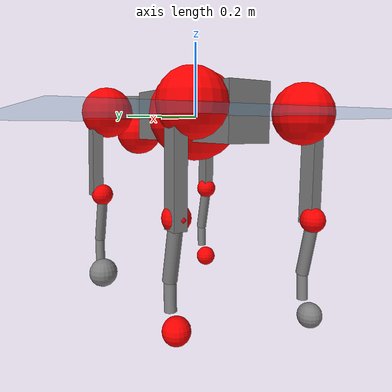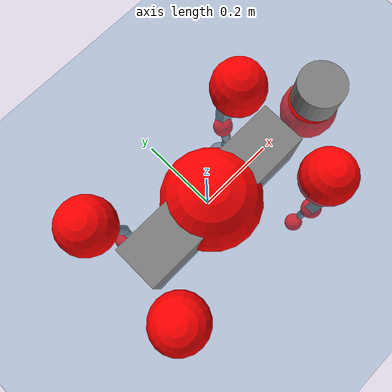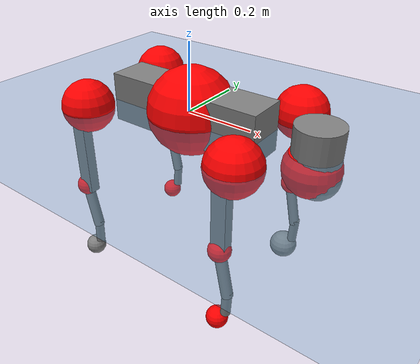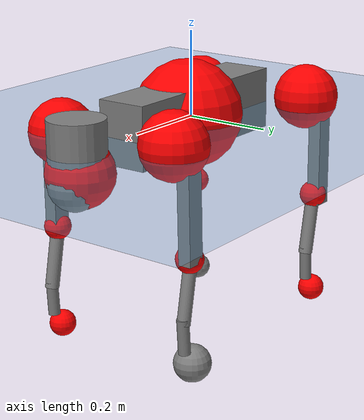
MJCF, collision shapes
<mujoco model="go2">
  <compiler angle="radian" assetdir="assets" balanceinertia="true" inertiafromgeom="false"/>

  <option timestep="0.005" density="1.2" viscosity="2e-05"/>

  <size nkey="1"/>

  <visual>
    <quality shadowsize="8192"/>
    <map shadowclip="0.5"/>
  </visual>

  <default>
    <default class="/">
      <geom contype="0" conaffinity="0" group="1" solref="-1000 -80"/>
      <site size="0.01 0.005 0.005" group="5"/>
      <general forcelimited="true" biastype="affine" gainprm="20" biasprm="0 -20 -0.5"/>
      <default class="go2">
        <joint armature="0.01" damping="0.01" frictionloss="0.2"/>
        <geom condim="1" margin="0.001"/>
        <default class="visual">
          <geom type="mesh" group="2"/>
        </default>
        <default class="collision">
          <geom group="3"/>
          <default class="foot">
            <geom size="0.022 0 0" condim="6" priority="1" friction="0.8 0.02 0.01" solimp="0.015 1 0.022"/>
          </default>
        </default>
        <default class="reward_collision_sphere">
          <geom group="5" rgba="1 0 0 1"/>
        </default>
      </default>
    </default>
  </default>

  <asset>
    <texture type="skybox" colorspace="auto" name="//unnamed_texture_0" builtin="gradient" rgb1="0.95 0.95 0.95" rgb2="0.95 0.95 0.95" width="100" height="600"/>
    <texture type="2d" colorspace="auto" name="texplane" builtin="checker" rgb1="0.345 0.575 0.748" rgb2="0.345 0.575 0.748" markrgb="1 1 1" width="512" height="512"/>
    <material name="MatPlane" class="/" texture="texplane" texuniform="true" texrepeat="2 2" specular="0.9"/>
    <material name="metal" class="/" rgba="0.9 0.95 0.95 1"/>
    <material name="black" class="/" rgba="0 0 0 1"/>
    <material name="white" class="/"/>
    <material name="gray" class="/" rgba="0.671705 0.692426 0.77427 1"/>
    <mesh name="base_0" class="/" file="base_0.obj"/>
    <mesh name="base_1" class="/" file="base_1.obj"/>
    <mesh name="base_2" class="/" file="base_2.obj"/>
    <mesh name="base_3" class="/" file="base_3.obj"/>
    <mesh name="base_4" class="/" file="base_4.obj"/>
    <mesh name="hip_0" class="/" file="hip_0.obj"/>
    <mesh name="hip_1" class="/" file="hip_1.obj"/>
    <mesh name="thigh_0" class="/" file="thigh_0.obj"/>
    <mesh name="thigh_1" class="/" file="thigh_1.obj"/>
    <mesh name="thigh_mirror_0" class="/" file="thigh_mirror_0.obj"/>
    <mesh name="thigh_mirror_1" class="/" file="thigh_mirror_1.obj"/>
    <mesh name="calf_0" class="/" file="calf_0.obj"/>
    <mesh name="calf_1" class="/" file="calf_1.obj"/>
    <mesh name="calf_mirror_0" class="/" file="calf_mirror_0.obj"/>
    <mesh name="calf_mirror_1" class="/" file="calf_mirror_1.obj"/>
    <mesh name="foot" class="/" file="foot.obj"/>
  </asset>

  <worldbody>
    <geom name="floor" class="/" size="100 100 0.125" type="plane" group="0" material="MatPlane"/>
    <light name="toplight_shadow" class="/" pos="0 0 5" dir="0.0990148 0.0990148 -0.990148" type="directional" ambient="0.04 0.04 0.04" diffuse="0.55 0.55 0.55" specular="0.12 0.12 0.12"/>
    <light name="toplight_fill" class="/" pos="0 0 5" dir="0.0990148 0.0990148 -0.990148" type="directional" castshadow="false" ambient="0.04 0.04 0.04" diffuse="0.3 0.3 0.3" specular="0.08 0.08 0.08"/>
    <body name="trunk" childclass="go2" pos="0.0103736 -0.00258757 0.00777722" quat="0.999989 0.00444406 -0.000551208 -0.00134486">
      <inertial pos="0.0361733 -0.00828329 -0.00676093" quat="-0.017726 0.672921 0.00291216 0.739496" mass="13.512" diaginertia="0.347658 0.420809 0.0379982"/>
      <joint name="//unnamed_joint_0" type="free" armature="0" damping="0" frictionloss="0"/>
      <geom name="//unnamed_geom_1" class="visual" material="black" mesh="base_0"/>
      <geom name="//unnamed_geom_2" class="visual" material="black" mesh="base_1"/>
      <geom name="//unnamed_geom_3" class="visual" material="black" mesh="base_2"/>
      <geom name="//unnamed_geom_4" class="visual" material="white" mesh="base_3"/>
      <geom name="//unnamed_geom_5" class="visual" material="gray" mesh="base_4"/>
      <geom name="trunk_1" class="collision" size="0.240235 0.0597075 0.0727985" type="box"/>
      <geom name="trunk_2" class="collision" size="0.0638583 0.0574725" pos="0.380818 0 0.0115548" type="cylinder"/>
      <geom name="trunk_3" class="collision" size="0.0600268" pos="0.391508 0 -0.069329"/>
      <geom name="//unnamed_geom_9" class="reward_collision_sphere" size="0.127717"/>
      <geom name="//unnamed_geom_10" class="reward_collision_sphere" size="0.07663" pos="0.374137 0 -0.0519968"/>
      <site name="imu" pos="-0.0760885 0.0781507 0.0783934" size="0.0127717"/>
      <camera name="track" pos="0 -2.67962 0" quat="0.707107 0.707107 0 0" mode="trackcom"/>
      <camera name="ego_camera" pos="0.416896 0 0.0519968" quat="-0.5 -0.5 0.5 0.5"/>
      <body name="FL_hip" pos="0.257802 0.0642574 0.00659452" quat="0.999971 0.00483241 0.00334688 -0.00483184">
        <inertial pos="0.000731494 0.00168314 0.00444183" quat="0.475983 0.487205 0.550105 0.483173" mass="1.16027" diaginertia="0.00313819 0.00215167 0.000736624"/>
        <joint name="FL_hip_joint" pos="0 0 0" axis="0.999121 -0.0383441 0.0169227" stiffness="0.0221939" range="-1.31765 1.01546" armature="0.00531476" damping="0.00572091" frictionloss="0.290521"/>
        <geom name="//unnamed_geom_11" class="visual" material="metal" mesh="hip_0"/>
        <geom name="//unnamed_geom_12" class="visual" material="gray" mesh="hip_1"/>
        <geom name="//unnamed_geom_13" class="collision" size="0.0587497 0.0255433" pos="0 0.107185 0" quat="0.707107 0.707107 0 0" type="cylinder"/>
        <geom name="//unnamed_geom_14" class="reward_collision_sphere" size="0.07663" pos="0 0.0937868 0"/>
        <body name="FL_thigh" pos="-7.79403e-05 0.131819 0.00501475" quat="1 -0.00055463 0.000215123 0.000567706">
          <inertial pos="-0.00437586 -0.0162128 -0.0221026" quat="0.827286 0.0908034 0.00340987 0.554384" mass="2.46862" diaginertia="0.0241218 0.0275462 0.00171539"/>
          <joint name="FL_thigh_joint" pos="0 0 0" axis="-0.0096693 0.999873 -0.0126877" range="-1.5506 3.19025" armature="0.0182708" damping="0.0865793" frictionloss="0.248955"/>
          <geom name="//unnamed_geom_15" class="visual" material="metal" mesh="thigh_0"/>
          <geom name="//unnamed_geom_16" class="visual" material="gray" mesh="thigh_1"/>
          <geom name="//unnamed_geom_17" class="collision" size="0.136018 0.0156453 0.0217118" pos="0 0 -0.123059" quat="0.707107 0 0.707107 0" type="box"/>
          <body name="FL_calf" pos="-0.0159038 -0.0144397 -0.25622" quat="1 -3.05625e-05 -1.62609e-05 -7.52934e-06">
            <inertial pos="0.0133982 0.00762539 -0.173309" quat="0.713448 0.00511792 -0.00432268 0.700676" mass="0.417904" diaginertia="0.00555535 0.00664226 0.000111062"/>
            <joint name="FL_calf_joint" pos="0 0 0" axis="-0.00775214 0.999881 -0.0133132" stiffness="0.0753784" range="-2.9185 -0.58235" armature="0.0138658" damping="0" frictionloss="0.28427"/>
            <geom name="//unnamed_geom_18" class="visual" material="gray" mesh="calf_0"/>
            <geom name="//unnamed_geom_19" class="visual" material="black" mesh="calf_1"/>
            <geom name="FL_calf0" class="collision" size="0.015326 0.07663" pos="0.0106896 0 -0.069329" quat="0.994493 0 -0.104807 0" type="cylinder"/>
            <geom name="//unnamed_geom_21" class="collision" size="0.0140488 0.0415079" pos="0.0267241 0 -0.171012" quat="0.999688 0 0.0249974 0" type="cylinder"/>
            <geom name="//unnamed_geom_22" class="visual" pos="0 0 -0.246118" quat="1 0 0 0" material="black" mesh="foot"/>
            <geom name="FL_foot" class="foot" size="0.0431034" pos="-0.00267241 0 -0.246118"/>
            <geom name="//unnamed_geom_24" class="reward_collision_sphere" size="0.0319292"/>
            <geom name="//unnamed_geom_25" class="reward_collision_sphere" size="0.0319292" pos="-0.00267241 0 -0.246118"/>
            <site name="FL_foot" class="foot" pos="-0.00267241 0 -0.246118" size="0.0127717"/>
          </body>
        </body>
      </body>
      <body name="FR_hip" pos="0.250907 -0.0701762 -0.0140564" quat="1 -2.09253e-05 3.73543e-05 6.84549e-05">
        <inertial pos="-0.00265091 0.00732849 -0.000262336" quat="0.444273 0.497178 0.533884 0.520003" mass="1.14641" diaginertia="0.00340612 0.00194123 0.000779781"/>
        <joint name="FR_hip_joint" pos="0 0 0" axis="0.999988 -0.00300545 -0.0039832" range="-1.26079 1.02353" armature="0.013286" damping="0.000519926" frictionloss="0.18407"/>
        <geom name="//unnamed_geom_26" class="visual" pos="0 1.60579e-09 6.88755e-08" quat="4.63268e-05 1 0 0" material="metal" mesh="hip_0"/>
        <geom name="//unnamed_geom_27" class="visual" pos="0 2.60317e-09 -1.70355e-07" quat="4.63268e-05 1 0 0" material="gray" mesh="hip_1"/>
        <geom name="//unnamed_geom_28" class="collision" size="0.0587497 0.0255433" pos="0 -0.107185 0" quat="0.707107 0.707107 0 0" type="cylinder"/>
        <geom name="//unnamed_geom_29" class="reward_collision_sphere" size="0.07663" pos="0 -0.0937868 0"/>
        <body name="FR_thigh" pos="-0.00737119 -0.127254 0.0114862" quat="0.999997 0.000633169 -0.000605919 0.00246944">
          <inertial pos="-0.00493474 0.0307799 -0.0234236" quat="0.551411 0.0541857 0.0563518 0.830563" mass="1.84966" diaginertia="0.0229822 0.0209183 0.0015017"/>
          <joint name="FR_thigh_joint" pos="0 0 0" axis="-0.00272787 -0.999983 -0.00512893" stiffness="0.0233348" range="-3.20967 1.34111" armature="0.0195575" damping="0.0157024" frictionloss="0.205537"/>
          <geom name="//unnamed_geom_30" class="visual" material="metal" mesh="thigh_mirror_0"/>
          <geom name="//unnamed_geom_31" class="visual" material="gray" mesh="thigh_mirror_1"/>
          <geom name="//unnamed_geom_32" class="collision" size="0.136018 0.0156453 0.0217118" pos="0 0 -0.123059" quat="0.707107 0 0.707107 0" type="box"/>
          <body name="FR_calf" pos="-0.0021974 -0.00134555 -0.245789" quat="1 0.000131761 -0.000388983 0.000165854">
            <inertial pos="0.00503171 0.000707615 -0.179385" quat="0.675002 -0.0125724 0.010801 0.73763" mass="0.687758" diaginertia="0.00698801 0.00611846 0.000153232"/>
            <joint name="FR_calf_joint" pos="0 0 0" axis="-0.018352 -0.99967 0.0180013" stiffness="0.0306001" range="0.84077 2.88395" armature="0.00599575" damping="0.00911805" frictionloss="0.253819"/>
            <geom name="//unnamed_geom_33" class="visual" material="gray" mesh="calf_mirror_0"/>
            <geom name="//unnamed_geom_34" class="visual" material="black" mesh="calf_mirror_1"/>
            <geom name="FR_calf0" class="collision" size="0.0166032 0.07663" pos="0.013362 0 -0.069329" quat="0.995004 0 -0.0998334 0" type="cylinder"/>
            <geom name="//unnamed_geom_36" class="collision" size="0.0140488 0.0415079" pos="0.0267241 0 -0.171012" quat="0.999688 0 0.0249974 0" type="cylinder"/>
            <geom name="//unnamed_geom_37" class="visual" pos="0 0 -0.246118" quat="1 0 0 0" material="black" mesh="foot"/>
            <geom name="FR_foot" class="foot" size="0.0217812" pos="-0.00267241 0 -0.246118"/>
            <geom name="//unnamed_geom_39" class="reward_collision_sphere" size="0.0319292"/>
            <geom name="//unnamed_geom_40" class="reward_collision_sphere" size="0.0319292" pos="-0.00267241 0 -0.246118"/>
            <site name="FR_foot" class="foot" pos="-0.00267241 0 -0.246118" size="0.0127717"/>
          </body>
        </body>
      </body>
      <body name="RL_hip" pos="-0.255158 0.0697243 0.0136796" quat="1 0.000228509 0.000609233 -6.24129e-05">
        <inertial pos="0.00768344 0.00397617 0.0133206" quat="0.50362 0.503214 0.487873 0.505097" mass="1.20707" diaginertia="0.00325978 0.00296795 0.00099783"/>
        <joint name="RL_hip_joint" pos="0 0 0" axis="-0.999923 0.00586856 0.0109336" range="-1.35219 0.781217" armature="0.0123162" damping="0.0537983" frictionloss="0.0858032"/>
        <geom name="//unnamed_geom_41" class="visual" pos="-1.57436e-09 0 -3.08611e-07" quat="4.63268e-05 0 1 0" material="metal" mesh="hip_0"/>
        <geom name="//unnamed_geom_42" class="visual" pos="-2.55223e-09 0 -2.73694e-07" quat="4.63268e-05 0 1 0" material="gray" mesh="hip_1"/>
        <geom name="//unnamed_geom_43" class="collision" size="0.0587497 0.0255433" pos="0 0.107185 0" quat="0.707107 0.707107 0 0" type="cylinder"/>
        <geom name="//unnamed_geom_44" class="reward_collision_sphere" size="0.07663" pos="0 0.0937868 0"/>
        <body name="RL_thigh" pos="-0.00112899 0.132229 -0.00343298" quat="1 -0.000110203 9.16273e-06 0.000128898">
          <inertial pos="0.00797097 -0.032838 -0.0222187" quat="0.85247 0.0664134 0.0279893 0.517785" mass="2.28922" diaginertia="0.0273178 0.0230572 0.00193905"/>
          <joint name="RL_thigh_joint" pos="0 0 0" axis="-0.0176112 0.997917 -0.0620635" stiffness="0.0274099" range="-0.259223 4.60696" armature="0.00884549" damping="0" frictionloss="0.252731"/>
          <geom name="//unnamed_geom_45" class="visual" material="metal" mesh="thigh_0"/>
          <geom name="//unnamed_geom_46" class="visual" material="gray" mesh="thigh_1"/>
          <geom name="//unnamed_geom_47" class="collision" size="0.136018 0.0156453 0.0217118" pos="0 0 -0.123059" quat="0.707107 0 0.707107 0" type="box"/>
          <body name="RL_calf" pos="0.00918605 -0.00682377 -0.235238" quat="1 9.41632e-05 -0.000146277 -0.000375729">
            <inertial pos="-0.00011116 0.00812491 -0.173148" quat="0.725626 -0.000802354 0.0488424 0.686354" mass="0.57709" diaginertia="0.00633361 0.00587434 0.000118536"/>
            <joint name="RL_calf_joint" pos="0 0 0" axis="-0.0351837 0.999202 -0.0189106" stiffness="0.0785066" range="-2.83451 -0.829494" armature="0.010527" damping="0.000596083" frictionloss="0.143896"/>
            <geom name="//unnamed_geom_48" class="visual" material="gray" mesh="calf_0"/>
            <geom name="//unnamed_geom_49" class="visual" material="black" mesh="calf_1"/>
            <geom name="RL_calf0" class="collision" size="0.0166032 0.07663" pos="0.013362 0 -0.069329" quat="0.995004 0 -0.0998334 0" type="cylinder"/>
            <geom name="//unnamed_geom_51" class="collision" size="0.0140488 0.0415079" pos="0.0267241 0 -0.171012" quat="0.999688 0 0.0249974 0" type="cylinder"/>
            <geom name="//unnamed_geom_52" class="visual" pos="0 0 -0.246118" quat="1 0 0 0" material="black" mesh="foot"/>
            <geom name="RL_foot" class="foot" size="0.0216227" pos="-0.00267241 0 -0.246118"/>
            <geom name="//unnamed_geom_54" class="reward_collision_sphere" size="0.0319292"/>
            <geom name="//unnamed_geom_55" class="reward_collision_sphere" size="0.0319292" pos="-0.00267241 0 -0.246118"/>
            <site name="RL_foot" class="foot" pos="-0.00267241 0 -0.246118" size="0.0127717"/>
          </body>
        </body>
      </body>
      <body name="RR_hip" pos="-0.257673 -0.0572697 -0.000942984" quat="0.999995 0.00256512 -0.000136145 -0.00167109">
        <inertial pos="0.00715782 -0.0156727 0.010234" quat="0.49897 0.496651 0.498914 0.505423" mass="1.53148" diaginertia="0.00464108 0.00318619 0.00118755"/>
        <joint name="RR_hip_joint" pos="0 0 0" axis="-0.999631 0.00179836 -0.0271001" range="-1.1689 1.28151" armature="0.0176797" damping="0.069317" frictionloss="0.180276"/>
        <geom name="//unnamed_geom_56" class="visual" pos="1.57449e-09 1.60579e-09 -3.77486e-07" quat="2.14617e-09 4.63268e-05 4.63268e-05 -1" material="metal" mesh="hip_0"/>
        <geom name="//unnamed_geom_57" class="visual" pos="2.55192e-09 2.60317e-09 -1.03339e-07" quat="2.14617e-09 4.63268e-05 4.63268e-05 -1" material="gray" mesh="hip_1"/>
        <geom name="//unnamed_geom_58" class="collision" size="0.0587497 0.0255433" pos="0 -0.107185 0" quat="0.707107 0.707107 0 0" type="cylinder"/>
        <geom name="//unnamed_geom_59" class="reward_collision_sphere" size="0.07663" pos="0 -0.0937868 0"/>
        <body name="RR_thigh" pos="-0.00336267 -0.125736 -0.0139939" quat="1 0.000442748 -0.000212441 -8.60835e-05">
          <inertial pos="0.00418274 0.0194438 -0.0375624" quat="0.552599 -0.0241238 0.0813884 0.829113" mass="3.1658" diaginertia="0.026516 0.0296105 0.00177481"/>
          <joint name="RR_thigh_joint" pos="0 0 0" axis="-0.018037 -0.99953 -0.0247991" range="-4.25767 0.260022" armature="0.0121142" damping="0.00175648" frictionloss="0.408918"/>
          <geom name="//unnamed_geom_60" class="visual" material="metal" mesh="thigh_mirror_0"/>
          <geom name="//unnamed_geom_61" class="visual" material="gray" mesh="thigh_mirror_1"/>
          <geom name="//unnamed_geom_62" class="collision" size="0.136018 0.0156453 0.0217118" pos="0 0 -0.123059" quat="0.707107 0 0.707107 0" type="box"/>
          <body name="RR_calf" pos="-0.0143032 0.00217788 -0.248709" quat="0.999999 0.000193946 -0.000224234 -0.00146682">
            <inertial pos="0.00269416 0.000195256 -0.164617" quat="0.701329 -0.0174329 0.00529848 0.712605" mass="0.641317" diaginertia="0.00745804 0.0072276 0.00012121"/>
            <joint name="RR_calf_joint" pos="0 0 0" axis="0.0376589 -0.999119 0.0185027" stiffness="0.0551279" range="0.887897 2.5494" armature="0.0170658" damping="0.0766749" frictionloss="0.252614"/>
            <geom name="//unnamed_geom_63" class="visual" material="gray" mesh="calf_mirror_0"/>
            <geom name="//unnamed_geom_64" class="visual" material="black" mesh="calf_mirror_1"/>
            <geom name="RR_calf0" class="collision" size="0.0166032 0.07663" pos="0.013362 0 -0.069329" quat="0.995004 0 -0.0998334 0" type="cylinder"/>
            <geom name="//unnamed_geom_66" class="collision" size="0.0140488 0.0415079" pos="0.0267241 0 -0.171012" quat="0.999688 0 0.0249974 0" type="cylinder"/>
            <geom name="//unnamed_geom_67" class="visual" pos="0 0 -0.246118" quat="1 0 0 0" material="black" mesh="foot"/>
            <geom name="RR_foot" class="foot" size="0.03194" pos="-0.00267241 0 -0.246118"/>
            <geom name="//unnamed_geom_69" class="reward_collision_sphere" size="0.0319292"/>
            <geom name="//unnamed_geom_70" class="reward_collision_sphere" size="0.0319292" pos="-0.00267241 0 -0.246118"/>
            <site name="RR_foot" class="foot" pos="-0.00267241 0 -0.246118" size="0.0127717"/>
          </body>
        </body>
      </body>
    </body>
  </worldbody>

  <contact>
    <pair class="/" geom1="floor" geom2="FL_foot" name="//unnamed_contact_0"/>
    <pair class="/" geom1="floor" geom2="FR_foot" name="//unnamed_contact_1"/>
    <pair class="/" geom1="floor" geom2="RL_foot" name="//unnamed_contact_2"/>
    <pair class="/" geom1="floor" geom2="RR_foot" name="//unnamed_contact_3"/>
  </contact>

  <actuator>
    <general name="FL_hip" class="/" joint="FL_hip_joint" forcerange="-26.739 26.739" gainprm="29.0829" biasprm="0 -29.0829 -0.432634"/>
    <general name="FL_thigh" class="/" joint="FL_thigh_joint" forcerange="-16.2862 16.2862" gainprm="29.0829" biasprm="0 -29.0829 -0.432634"/>
    <general name="FL_calf" class="/" joint="FL_calf_joint" forcerange="-87.2417 87.2417" gainprm="29.0829" biasprm="0 -29.0829 -0.432634"/>
    <general name="FR_hip" class="/" joint="FR_hip_joint" forcerange="-28.56 28.56" gainprm="29.0829" biasprm="0 -29.0829 -0.432634"/>
    <general name="FR_thigh" class="/" joint="FR_thigh_joint" forcerange="-20.0633 20.0633" gainprm="29.0829" biasprm="0 -29.0829 -0.432634"/>
    <general name="FR_calf" class="/" joint="FR_calf_joint" forcerange="-23.1398 23.1398" gainprm="29.0829" biasprm="0 -29.0829 -0.432634"/>
    <general name="RL_hip" class="/" joint="RL_hip_joint" forcerange="-14.8192 14.8192" gainprm="29.0829" biasprm="0 -29.0829 -0.432634"/>
    <general name="RL_thigh" class="/" joint="RL_thigh_joint" forcerange="-21.808 21.808" gainprm="29.0829" biasprm="0 -29.0829 -0.432634"/>
    <general name="RL_calf" class="/" joint="RL_calf_joint" forcerange="-59.0316 59.0316" gainprm="29.0829" biasprm="0 -29.0829 -0.432634"/>
    <general name="RR_hip" class="/" joint="RR_hip_joint" forcerange="-30.5484 30.5484" gainprm="29.0829" biasprm="0 -29.0829 -0.432634"/>
    <general name="RR_thigh" class="/" joint="RR_thigh_joint" forcerange="-47.5908 47.5908" gainprm="29.0829" biasprm="0 -29.0829 -0.432634"/>
    <general name="RR_calf" class="/" joint="RR_calf_joint" forcerange="-83.351 83.351" gainprm="29.0829" biasprm="0 -29.0829 -0.432634"/>
  </actuator>

  <sensor>
    <gyro site="imu" name="imu_angular_velocity"/>
    <velocimeter site="imu" name="imu_linear_velocity"/>
    <framelinvel objtype="site" objname="FL_foot" name="FL_foot_global_linear_velocity"/>
    <framelinvel objtype="site" objname="FR_foot" name="FR_foot_global_linear_velocity"/>
    <framelinvel objtype="site" objname="RL_foot" name="RL_foot_global_linear_velocity"/>
    <framelinvel objtype="site" objname="RR_foot" name="RR_foot_global_linear_velocity"/>
  </sensor>

  <keyframe>
    <key name="home" qpos="0 0 0.325 1 0 0 0 0.1 0.8 -1.5 -0.1 -0.8 1.5 -0.1 0.8 -1.5 0.1 -0.8 1.5"/>
  </keyframe>
</mujoco>
